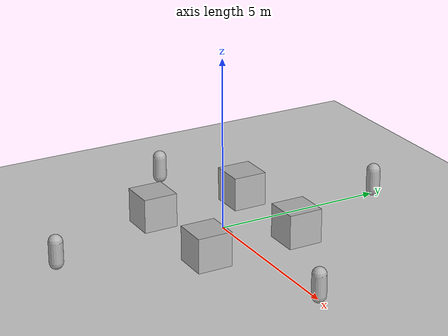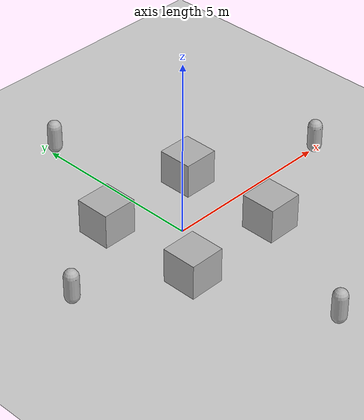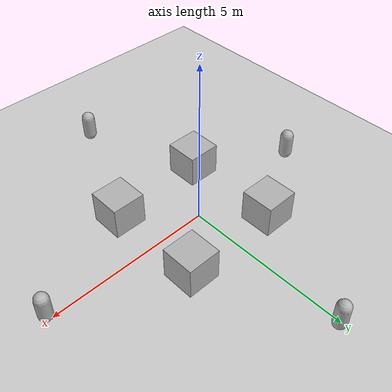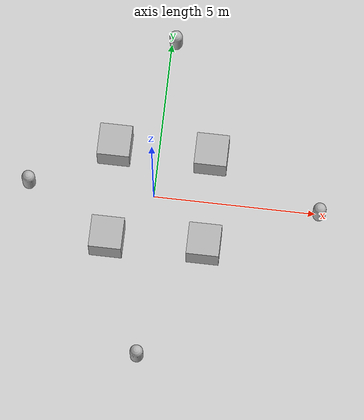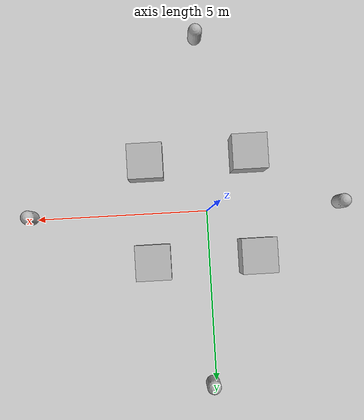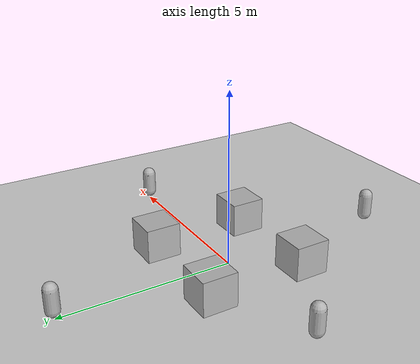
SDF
<sdf version='1.9'>
  <world name='empty'>
    <physics name='1ms' type='ignored'>
      <max_step_size>0.001</max_step_size>
      <real_time_factor>1</real_time_factor>
      <real_time_update_rate>1000</real_time_update_rate>
    </physics>
    <plugin name='gz::sim::systems::Physics' filename='gz-sim-physics-system'/>
    <plugin name='gz::sim::systems::UserCommands' filename='gz-sim-user-commands-system'/>
    <plugin name='gz::sim::systems::SceneBroadcaster' filename='gz-sim-scene-broadcaster-system'/>
    <plugin name='gz::sim::systems::Sensors' filename='gz-sim-sensors-system'>
      <render_engine>ogre2</render_engine>
    </plugin>
    <plugin name='gz::sim::systems::Contact' filename='gz-sim-contact-system'/>
    <gravity>0 0 -9.8</gravity>
    <magnetic_field>6e-06 2.3e-05 -4.2e-05</magnetic_field>
    <atmosphere type='adiabatic'/>
    <scene>
      <ambient>0.4 0.4 0.4 1</ambient>
      <background>0.7 0.7 0.7 1</background>
      <shadows>true</shadows>
    </scene>
    <model name='ground_plane'>
      <static>true</static>
      <link name='link'>
        <collision name='collision'>
          <geometry>
            <plane>
              <normal>0 0 1</normal>
              <size>100 100</size>
            </plane>
          </geometry>
          <surface>
            <friction>
              <ode/>
            </friction>
            <bounce/>
            <contact/>
          </surface>
        </collision>
        <visual name='visual'>
          <geometry>
            <plane>
              <normal>0 0 1</normal>
              <size>100 100</size>
            </plane>
          </geometry>
          <material>
            <ambient>0.8 0.8 0.8 1</ambient>
            <diffuse>0.8 0.8 0.8 1</diffuse>
            <specular>0.8 0.8 0.8 1</specular>
          </material>
        </visual>
        <pose>0 0 0 0 -0 0</pose>
        <inertial>
          <pose>0 0 0 0 -0 0</pose>
          <mass>1</mass>
          <inertia>
            <ixx>1</ixx>
            <ixy>0</ixy>
            <ixz>0</ixz>
            <iyy>1</iyy>
            <iyz>0</iyz>
            <izz>1</izz>
          </inertia>
        </inertial>
        <enable_wind>false</enable_wind>
      </link>
      <pose>0 0 0 0 -0 0</pose>
      <self_collide>false</self_collide>
    </model>
    <model name='box'>
      <pose>1.71748 -1.45739 0.5 -0 0 0</pose>
      <link name='box_link'>
        <inertial>
          <inertia>
            <ixx>0.16666</ixx>
            <ixy>0</ixy>
            <ixz>0</ixz>
            <iyy>0.16666</iyy>
            <iyz>0</iyz>
            <izz>0.16666</izz>
          </inertia>
          <mass>1</mass>
          <pose>0 0 0 0 -0 0</pose>
        </inertial>
        <collision name='box_collision'>
          <geometry>
            <box>
              <size>1 1 1</size>
            </box>
          </geometry>
          <surface>
            <friction>
              <ode/>
            </friction>
            <bounce/>
            <contact/>
          </surface>
        </collision>
        <visual name='box_visual'>
          <geometry>
            <box>
              <size>1 1 1</size>
            </box>
          </geometry>
          <material>
            <ambient>0.3 0.3 0.3 1</ambient>
            <diffuse>0.7 0.7 0.7 1</diffuse>
            <specular>1 1 1 1</specular>
          </material>
        </visual>
        <pose>0 0 0 0 -0 0</pose>
        <enable_wind>false</enable_wind>
      </link>
      <static>false</static>
      <self_collide>false</self_collide>
    </model>
    <model name='box_0'>
      <pose>1.63621 1.4062 0.5 0 0 -0</pose>
      <link name='box_link'>
        <inertial>
          <inertia>
            <ixx>0.16666</ixx>
            <ixy>0</ixy>
            <ixz>0</ixz>
            <iyy>0.16666</iyy>
            <iyz>0</iyz>
            <izz>0.16666</izz>
          </inertia>
          <mass>1</mass>
          <pose>0 0 0 0 -0 0</pose>
        </inertial>
        <collision name='box_collision'>
          <geometry>
            <box>
              <size>1 1 1</size>
            </box>
          </geometry>
          <surface>
            <friction>
              <ode/>
            </friction>
            <bounce/>
            <contact/>
          </surface>
        </collision>
        <visual name='box_visual'>
          <geometry>
            <box>
              <size>1 1 1</size>
            </box>
          </geometry>
          <material>
            <ambient>0.3 0.3 0.3 1</ambient>
            <diffuse>0.7 0.7 0.7 1</diffuse>
            <specular>1 1 1 1</specular>
          </material>
        </visual>
        <pose>0 0 0 0 -0 0</pose>
        <enable_wind>false</enable_wind>
      </link>
      <static>false</static>
      <self_collide>false</self_collide>
    </model>
    <model name='box_1'>
      <pose>-1.35245 1.37508 0.5 0 0 -0</pose>
      <link name='box_link'>
        <inertial>
          <inertia>
            <ixx>0.16666</ixx>
            <ixy>0</ixy>
            <ixz>0</ixz>
            <iyy>0.16666</iyy>
            <iyz>0</iyz>
            <izz>0.16666</izz>
          </inertia>
          <mass>1</mass>
          <pose>0 0 0 0 -0 0</pose>
        </inertial>
        <collision name='box_collision'>
          <geometry>
            <box>
              <size>1 1 1</size>
            </box>
          </geometry>
          <surface>
            <friction>
              <ode/>
            </friction>
            <bounce/>
            <contact/>
          </surface>
        </collision>
        <visual name='box_visual'>
          <geometry>
            <box>
              <size>1 1 1</size>
            </box>
          </geometry>
          <material>
            <ambient>0.3 0.3 0.3 1</ambient>
            <diffuse>0.7 0.7 0.7 1</diffuse>
            <specular>1 1 1 1</specular>
          </material>
        </visual>
        <pose>0 0 0 0 -0 0</pose>
        <enable_wind>false</enable_wind>
      </link>
      <static>false</static>
      <self_collide>false</self_collide>
    </model>
    <model name='box_2'>
      <pose>-1.24863 -1.56618 0.5 0 0 -0</pose>
      <link name='box_link'>
        <inertial>
          <inertia>
            <ixx>0.16666</ixx>
            <ixy>0</ixy>
            <ixz>0</ixz>
            <iyy>0.16666</iyy>
            <iyz>0</iyz>
            <izz>0.16666</izz>
          </inertia>
          <mass>1</mass>
          <pose>0 0 0 0 -0 0</pose>
        </inertial>
        <collision name='box_collision'>
          <geometry>
            <box>
              <size>1 1 1</size>
            </box>
          </geometry>
          <surface>
            <friction>
              <ode/>
            </friction>
            <bounce/>
            <contact/>
          </surface>
        </collision>
        <visual name='box_visual'>
          <geometry>
            <box>
              <size>1 1 1</size>
            </box>
          </geometry>
          <material>
            <ambient>0.3 0.3 0.3 1</ambient>
            <diffuse>0.7 0.7 0.7 1</diffuse>
            <specular>1 1 1 1</specular>
          </material>
        </visual>
        <pose>0 0 0 0 -0 0</pose>
        <enable_wind>false</enable_wind>
      </link>
      <static>false</static>
      <self_collide>false</self_collide>
    </model>
    <model name='capsule'>
      <pose>5.11411 -0.057482 0.5 0 -0 0</pose>
      <link name='capsule_link'>
        <inertial>
          <inertia>
            <ixx>0.074153999999999998</ixx>
            <ixy>0</ixy>
            <ixz>0</ixz>
            <iyy>0.074153999999999998</iyy>
            <iyz>0</iyz>
            <izz>0.018769000000000001</izz>
          </inertia>
          <mass>1</mass>
          <pose>0 0 0 0 -0 0</pose>
        </inertial>
        <collision name='capsule_collision'>
          <geometry>
            <capsule>
              <radius>0.20000000000000001</radius>
              <length>0.59999999999999998</length>
            </capsule>
          </geometry>
          <surface>
            <friction>
              <ode/>
            </friction>
            <bounce/>
            <contact/>
          </surface>
        </collision>
        <visual name='capsule_visual'>
          <geometry>
            <capsule>
              <radius>0.20000000000000001</radius>
              <length>0.59999999999999998</length>
            </capsule>
          </geometry>
          <material>
            <ambient>0.3 0.3 0.3 1</ambient>
            <diffuse>0.7 0.7 0.7 1</diffuse>
            <specular>1 1 1 1</specular>
          </material>
        </visual>
        <pose>0 0 0 0 -0 0</pose>
        <enable_wind>false</enable_wind>
      </link>
      <static>false</static>
      <self_collide>false</self_collide>
    </model>
    <model name='capsule_0'>
      <pose>0.121534 4.9952 0.5 0 -0 0</pose>
      <link name='capsule_link'>
        <inertial>
          <inertia>
            <ixx>0.074153999999999998</ixx>
            <ixy>0</ixy>
            <ixz>0</ixz>
            <iyy>0.074153999999999998</iyy>
            <iyz>0</iyz>
            <izz>0.018769000000000001</izz>
          </inertia>
          <mass>1</mass>
          <pose>0 0 0 0 -0 0</pose>
        </inertial>
        <collision name='capsule_collision'>
          <geometry>
            <capsule>
              <radius>0.20000000000000001</radius>
              <length>0.59999999999999998</length>
            </capsule>
          </geometry>
          <surface>
            <friction>
              <ode/>
            </friction>
            <bounce/>
            <contact/>
          </surface>
        </collision>
        <visual name='capsule_visual'>
          <geometry>
            <capsule>
              <radius>0.20000000000000001</radius>
              <length>0.59999999999999998</length>
            </capsule>
          </geometry>
          <material>
            <ambient>0.3 0.3 0.3 1</ambient>
            <diffuse>0.7 0.7 0.7 1</diffuse>
            <specular>1 1 1 1</specular>
          </material>
        </visual>
        <pose>0 0 0 0 -0 0</pose>
        <enable_wind>false</enable_wind>
      </link>
      <static>false</static>
      <self_collide>false</self_collide>
    </model>
    <model name='capsule_1'>
      <pose>0.088308 -5.09748 0.5 0 -0 0</pose>
      <link name='capsule_link'>
        <inertial>
          <inertia>
            <ixx>0.074153999999999998</ixx>
            <ixy>0</ixy>
            <ixz>0</ixz>
            <iyy>0.074153999999999998</iyy>
            <iyz>0</iyz>
            <izz>0.018769000000000001</izz>
          </inertia>
          <mass>1</mass>
          <pose>0 0 0 0 -0 0</pose>
        </inertial>
        <collision name='capsule_collision'>
          <geometry>
            <capsule>
              <radius>0.20000000000000001</radius>
              <length>0.59999999999999998</length>
            </capsule>
          </geometry>
          <surface>
            <friction>
              <ode/>
            </friction>
            <bounce/>
            <contact/>
          </surface>
        </collision>
        <visual name='capsule_visual'>
          <geometry>
            <capsule>
              <radius>0.20000000000000001</radius>
              <length>0.59999999999999998</length>
            </capsule>
          </geometry>
          <material>
            <ambient>0.3 0.3 0.3 1</ambient>
            <diffuse>0.7 0.7 0.7 1</diffuse>
            <specular>1 1 1 1</specular>
          </material>
        </visual>
        <pose>0 0 0 0 -0 0</pose>
        <enable_wind>false</enable_wind>
      </link>
      <static>false</static>
      <self_collide>false</self_collide>
    </model>
    <model name='capsule_2'>
      <pose>-3.84904 -0.039648 0.5 0 -0 0</pose>
      <link name='capsule_link'>
        <inertial>
          <inertia>
            <ixx>0.074153999999999998</ixx>
            <ixy>0</ixy>
            <ixz>0</ixz>
            <iyy>0.074153999999999998</iyy>
            <iyz>0</iyz>
            <izz>0.018769000000000001</izz>
          </inertia>
          <mass>1</mass>
          <pose>0 0 0 0 -0 0</pose>
        </inertial>
        <collision name='capsule_collision'>
          <geometry>
            <capsule>
              <radius>0.20000000000000001</radius>
              <length>0.59999999999999998</length>
            </capsule>
          </geometry>
          <surface>
            <friction>
              <ode/>
            </friction>
            <bounce/>
            <contact/>
          </surface>
        </collision>
        <visual name='capsule_visual'>
          <geometry>
            <capsule>
              <radius>0.20000000000000001</radius>
              <length>0.59999999999999998</length>
            </capsule>
          </geometry>
          <material>
            <ambient>0.3 0.3 0.3 1</ambient>
            <diffuse>0.7 0.7 0.7 1</diffuse>
            <specular>1 1 1 1</specular>
          </material>
        </visual>
        <pose>0 0 0 0 -0 0</pose>
        <enable_wind>false</enable_wind>
      </link>
      <static>false</static>
      <self_collide>false</self_collide>
    </model>
    <light name='sun' type='directional'>
      <pose>0 0 10 0 -0 0</pose>
      <cast_shadows>true</cast_shadows>
      <intensity>1</intensity>
      <direction>-0.5 0.1 -0.9</direction>
      <diffuse>0.8 0.8 0.8 1</diffuse>
      <specular>0.2 0.2 0.2 1</specular>
      <attenuation>
        <range>1000</range>
        <linear>0.01</linear>
        <constant>0.90000000000000002</constant>
        <quadratic>0.001</quadratic>
      </attenuation>
      <spot>
        <inner_angle>0</inner_angle>
        <outer_angle>0</outer_angle>
        <falloff>0</falloff>
      </spot>
    </light>
  </world>
</sdf>
